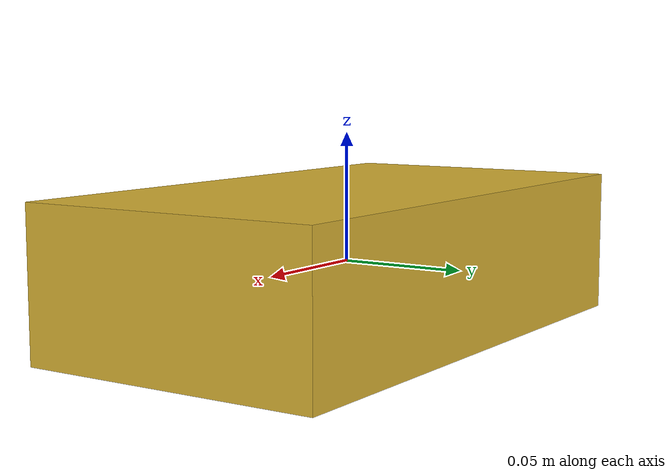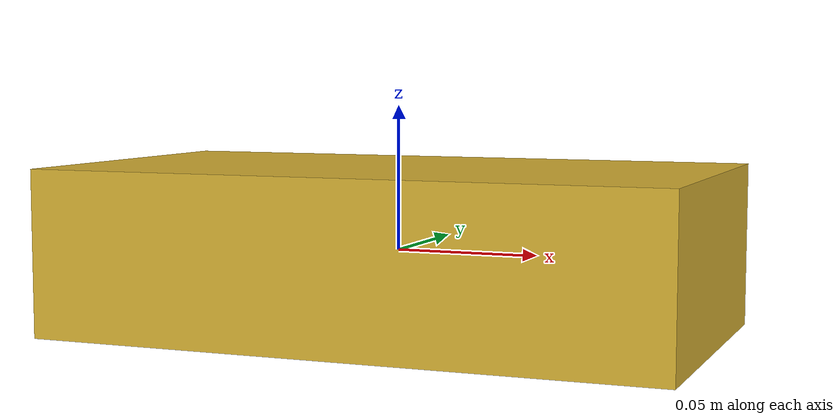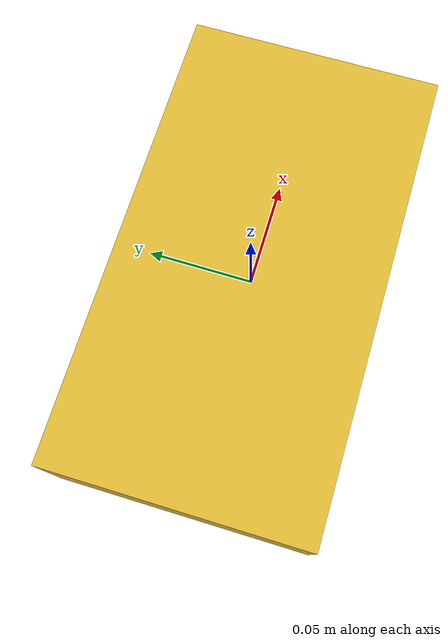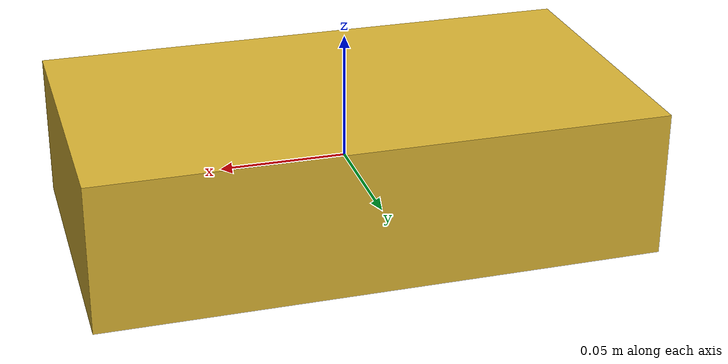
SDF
<?xml version="1.0" ?>
<sdf version="1.5">

  <model name="box10kg">
    <pose>0 0 0 0 0 0</pose>

    <self_collide>false</self_collide>
    <static>false</static>

    <link name="box">

      <inertial>
        <mass>10</mass>
        <inertia>
          <ixx>0.02</ixx>
          <iyy>0.02</iyy>
          <izz>0.035</izz>
        </inertia>
      </inertial>

      <gravity>true</gravity>
      <self_collide>false</self_collide>
      <velocity_decay/>

      <visual name="box_visual">
        <pose>0 0 0 0 0 0</pose>
        <geometry>
          <box>
            <size>0.22 0.12 0.058</size>
          </box>
        </geometry>
        <material>
          <script>
            <name>Gazebo/Gold</name>
            <uri>file://media/materials/scripts/gazebo.material</uri>
          </script>
        </material>
      </visual>

      <collision name="box_collision">
        <pose>0 0 0 0 0 0</pose>
        <geometry>
          <box>
            <size>0.22 0.12 0.058</size>
          </box>
        </geometry>
        <surface>
          <contact>
            <ode>
              <min_depth>0.001</min_depth>
              <max_vel>0</max_vel>
            </ode>
          </contact>
          <friction>
            <ode/>
          </friction>
        </surface>
      </collision>
    </link>

  </model>

</sdf>

<!-- vim: set et ft=xml fenc=utf-8 ff=unix sts=0 sw=2 ts=2 : -->
